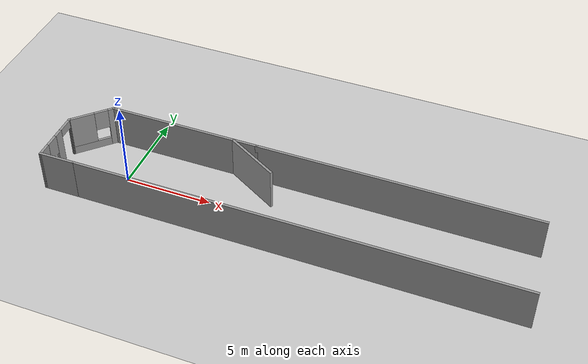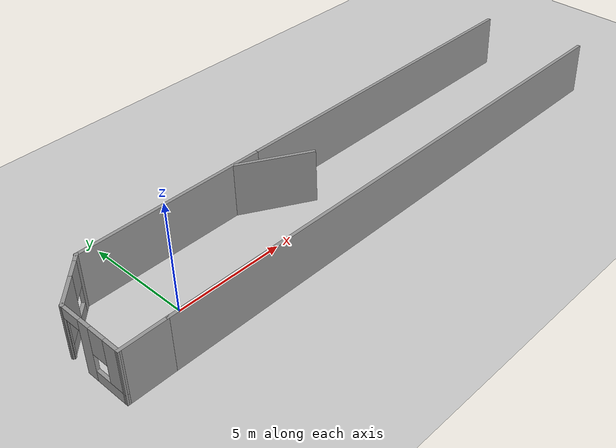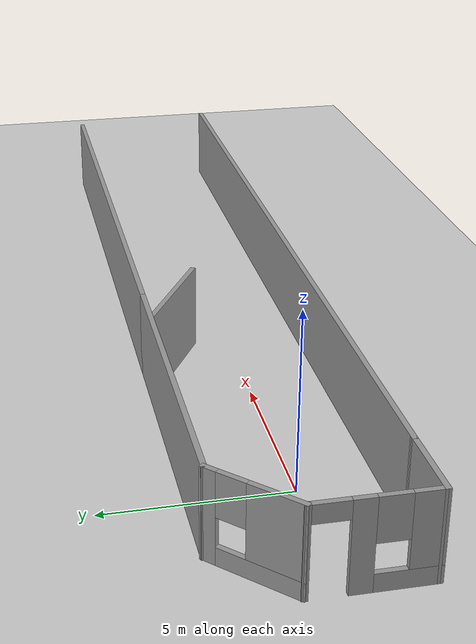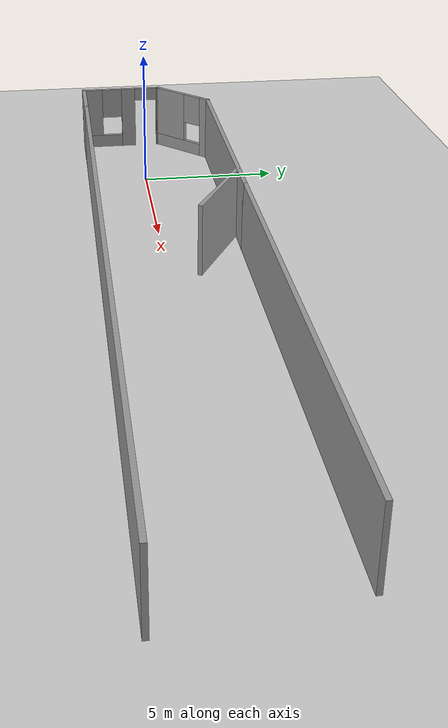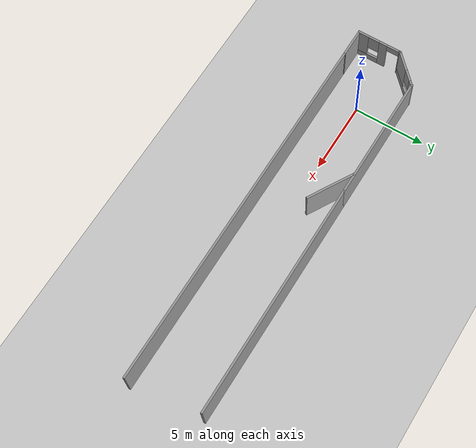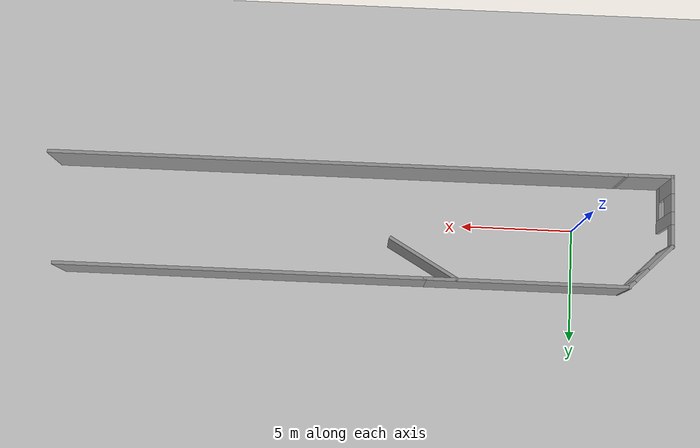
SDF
<sdf version="1.7">
 <world name="default">
  <light name="sun" type="directional">
   <pose>0 0 10 0 -0 0</pose>
   <diffuse>0.8 0.8 0.8 1</diffuse>
   <specular>0.2 0.2 0.2 1</specular>
   <attenuation>
    <range>1000</range>
    <constant>0.9</constant>
    <linear>0.01</linear>
    <quadratic>0.001</quadratic>
   </attenuation>
   <direction>-0.5 0.1 -0.9</direction>
   <spot><inner_angle>0</inner_angle><outer_angle>0</outer_angle><falloff>0</falloff></spot>
  </light>
  <model name="ground_plane">
   <static>1</static>
   <link name="link">
    <collision name="collision">
     <geometry><plane><normal>0 0 1</normal><size>100 100</size></plane></geometry>
     <surface><friction><ode><mu>100</mu><mu2>50</mu2></ode></friction></surface>
    </collision>
    <visual name="visual">
     <cast_shadows>0</cast_shadows>
     <geometry><plane><normal>0 0 1</normal><size>100 100</size></plane></geometry>
     <material>
      <script><uri>file://media/materials/scripts/gazebo.material</uri><name>Gazebo/Grey</name></script>
     </material>
    </visual>
   </link>
  </model>
  <gravity>0 0 -9.8</gravity>
  <magnetic_field>6e-06 2.3e-05 -4.2e-05</magnetic_field>
  <atmosphere type="adiabatic"/>
  <physics type="ode">
   <max_step_size>0.001</max_step_size>
   <real_time_factor>1</real_time_factor>
   <real_time_update_rate>1000</real_time_update_rate>
  </physics>
  <scene><ambient>0.4 0.4 0.4 1</ambient><background>0.7 0.7 0.7 1</background><shadows>1</shadows></scene>
  <spherical_coordinates>
   <surface_model>EARTH_WGS84</surface_model>
   <latitude_deg>0</latitude_deg>
   <longitude_deg>0</longitude_deg>
   <elevation>0</elevation>
   <heading_deg>0</heading_deg>
  </spherical_coordinates>
  <model name="slam">
   <pose>9.71362 0.299498 0 0 -0 0</pose>
   <link name="Wall_1">
    <collision name="Wall_1_Collision">
     <geometry><box><size>25.5 0.15 2.5</size></box></geometry>
     <pose>0 0 1.25 0 -0 0</pose>
    </collision>
    <visual name="Wall_1_Visual">
     <pose>0 0 1.25 0 -0 0</pose>
     <geometry><box><size>25.5 0.15 2.5</size></box></geometry>
     <material>
      <script><uri>file://media/materials/scripts/gazebo.material</uri><name>Gazebo/Grey</name></script>
      <ambient>1 1 1 1</ambient>
     </material>
     <meta><layer>0</layer></meta>
    </visual>
    <pose>1.03043 -2.47015 0 0 -0 0</pose>
   </link>
   <link name="Wall_11">
    <pose>-12.7551 1.53473 0 0 -0 -2.35619</pose>
    <visual name="Wall_11_Visual_0">
     <pose>-1.15999 0 1.25 0 -0 0</pose>
     <geometry><box><size>0.430026 0.15 2.5</size></box></geometry>
     <material>
      <script><uri>file://media/materials/scripts/gazebo.material</uri><name>Gazebo/Grey</name></script>
      <ambient>1 1 1 1</ambient>
     </material>
     <meta><layer>0</layer></meta>
    </visual>
    <collision name="Wall_11_Collision_0">
     <geometry><box><size>0.430026 0.15 2.5</size></box></geometry>
     <pose>-1.15999 0 1.25 0 -0 0</pose>
    </collision>
    <visual name="Wall_11_Visual_1">
     <pose>0.215013 0 0.25 0 -0 0</pose>
     <geometry><box><size>2.31997 0.15 0.5</size></box></geometry>
     <material>
      <script><uri>file://media/materials/scripts/gazebo.material</uri><name>Gazebo/Grey</name></script>
      <ambient>1 1 1 1</ambient>
     </material>
     <meta><layer>0</layer></meta>
    </visual>
    <collision name="Wall_11_Collision_1">
     <geometry><box><size>2.31997 0.15 0.5</size></box></geometry>
     <pose>0.215013 0 0.25 0 -0 0</pose>
    </collision>
    <visual name="Wall_11_Visual_2">
     <pose>0.615013 0 1.5 0 -0 0</pose>
     <geometry><box><size>1.51997 0.15 2</size></box></geometry>
     <material>
      <script><uri>file://media/materials/scripts/gazebo.material</uri><name>Gazebo/Grey</name></script>
      <ambient>1 1 1 1</ambient>
     </material>
     <meta><layer>0</layer></meta>
    </visual>
    <collision name="Wall_11_Collision_2">
     <geometry><box><size>1.51997 0.15 2</size></box></geometry>
     <pose>0.615013 0 1.5 0 -0 0</pose>
    </collision>
    <visual name="Wall_11_Visual_3">
     <pose>-0.544974 0 1.9 0 -0 0</pose>
     <geometry><box><size>0.8 0.15 1.2</size></box></geometry>
     <material>
      <script><uri>file://media/materials/scripts/gazebo.material</uri><name>Gazebo/Grey</name></script>
      <ambient>1 1 1 1</ambient>
     </material>
     <meta><layer>0</layer></meta>
    </visual>
    <collision name="Wall_11_Collision_3">
     <geometry><box><size>0.8 0.15 1.2</size></box></geometry>
     <pose>-0.544974 0 1.9 0 -0 0</pose>
    </collision>
   </link>
   <link name="Wall_12">
    <pose>-13.6744 -0.934508 0 0 -0 -1.5708</pose>
    <visual name="Wall_12_Visual_0">
     <pose>-1.54512 0 1.25 0 -0 0</pose>
     <geometry><box><size>0.15977 0.15 2.5</size></box></geometry>
     <material>
      <script><uri>file://media/materials/scripts/gazebo.material</uri><name>Gazebo/Grey</name></script>
      <ambient>1 1 1 1</ambient>
     </material>
     <meta><layer>0</layer></meta>
    </visual>
    <collision name="Wall_12_Collision_0">
     <geometry><box><size>0.15977 0.15 2.5</size></box></geometry>
     <pose>-1.54512 0 1.25 0 -0 0</pose>
    </collision>
    <visual name="Wall_12_Visual_1">
     <pose>-0.284746 0 1.25 0 -0 0</pose>
     <geometry><box><size>0.560967 0.15 2.5</size></box></geometry>
     <material>
      <script><uri>file://media/materials/scripts/gazebo.material</uri><name>Gazebo/Grey</name></script>
      <ambient>1 1 1 1</ambient>
     </material>
     <meta><layer>0</layer></meta>
    </visual>
    <collision name="Wall_12_Collision_1">
     <geometry><box><size>0.560967 0.15 2.5</size></box></geometry>
     <pose>-0.284746 0 1.25 0 -0 0</pose>
    </collision>
    <visual name="Wall_12_Visual_2">
     <pose>0.810369 0 0.25 0 -0 0</pose>
     <geometry><box><size>1.62926 0.15 0.5</size></box></geometry>
     <material>
      <script><uri>file://media/materials/scripts/gazebo.material</uri><name>Gazebo/Grey</name></script>
      <ambient>1 1 1 1</ambient>
     </material>
     <meta><layer>0</layer></meta>
    </visual>
    <collision name="Wall_12_Collision_2">
     <geometry><box><size>1.62926 0.15 0.5</size></box></geometry>
     <pose>0.810369 0 0.25 0 -0 0</pose>
    </collision>
    <visual name="Wall_12_Visual_3">
     <pose>1.21037 0 1.5 0 -0 0</pose>
     <geometry><box><size>0.829263 0.15 2</size></box></geometry>
     <material>
      <script><uri>file://media/materials/scripts/gazebo.material</uri><name>Gazebo/Grey</name></script>
      <ambient>1 1 1 1</ambient>
     </material>
     <meta><layer>0</layer></meta>
    </visual>
    <collision name="Wall_12_Collision_3">
     <geometry><box><size>0.829263 0.15 2</size></box></geometry>
     <pose>1.21037 0 1.5 0 -0 0</pose>
    </collision>
    <visual name="Wall_12_Visual_4">
     <pose>0.395737 0 1.9 0 -0 0</pose>
     <geometry><box><size>0.8 0.15 1.2</size></box></geometry>
     <material>
      <script><uri>file://media/materials/scripts/gazebo.material</uri><name>Gazebo/Grey</name></script>
      <ambient>1 1 1 1</ambient>
     </material>
     <meta><layer>0</layer></meta>
    </visual>
    <collision name="Wall_12_Collision_4">
     <geometry><box><size>0.8 0.15 1.2</size></box></geometry>
     <pose>0.395737 0 1.9 0 -0 0</pose>
    </collision>
    <visual name="Wall_12_Visual_5">
     <pose>-1.01523 0 2.25 0 -0 0</pose>
     <geometry><box><size>0.9 0.15 0.5</size></box></geometry>
     <material>
      <script><uri>file://media/materials/scripts/gazebo.material</uri><name>Gazebo/Grey</name></script>
      <ambient>1 1 1 1</ambient>
     </material>
     <meta><layer>0</layer></meta>
    </visual>
    <collision name="Wall_12_Collision_5">
     <geometry><box><size>0.9 0.15 0.5</size></box></geometry>
     <pose>-1.01523 0 2.25 0 -0 0</pose>
    </collision>
   </link>
   <link name="Wall_13">
    <collision name="Wall_13_Collision">
     <geometry><box><size>2.17984 0.15 2.5</size></box></geometry>
     <pose>0 0 1.25 0 -0 0</pose>
    </collision>
    <visual name="Wall_13_Visual">
     <pose>0 0 1.25 0 -0 0</pose>
     <geometry><box><size>2.17984 0.15 2.5</size></box></geometry>
     <material>
      <script><uri>file://media/materials/scripts/gazebo.material</uri><name>Gazebo/Grey</name></script>
      <ambient>1 1 1 1</ambient>
     </material>
     <meta><layer>0</layer></meta>
    </visual>
    <pose>-12.6595 -2.47733 0 0 -0 0.007074</pose>
   </link>
   <link name="Wall_15">
    <collision name="Wall_15_Collision">
     <geometry><box><size>16.25 0.15 2.5</size></box></geometry>
     <pose>0 0 1.25 0 -0 0</pose>
    </collision>
    <visual name="Wall_15_Visual">
     <pose>0 0 1.25 0 -0 0</pose>
     <geometry><box><size>16.25 0.15 2.5</size></box></geometry>
     <material>
      <script><uri>file://media/materials/scripts/gazebo.material</uri><name>Gazebo/Grey</name></script>
      <ambient>1 1 1 1</ambient>
     </material>
     <meta><layer>0</layer></meta>
    </visual>
    <pose>5.06412 2.45397 0 0 -0 0</pose>
   </link>
   <link name="Wall_18">
    <collision name="Wall_18_Collision">
     <geometry><box><size>3.5 0.15 2.5</size></box></geometry>
     <pose>0 0 1.25 0 -0 0</pose>
    </collision>
    <visual name="Wall_18_Visual">
     <pose>0 0 1.25 0 -0 0</pose>
     <geometry><box><size>3.5 0.15 2.5</size></box></geometry>
     <material>
      <script><uri>file://media/materials/scripts/gazebo.material</uri><name>Gazebo/Grey</name></script>
      <ambient>1 1 1 1</ambient>
     </material>
     <meta><layer>0</layer></meta>
    </visual>
    <pose>-2.9138 1.58901 0 0 -0 2.61799</pose>
   </link>
   <link name="Wall_7">
    <collision name="Wall_7_Collision">
     <geometry><box><size>9 0.15 2.5</size></box></geometry>
     <pose>0 0 1.25 0 -0 0</pose>
    </collision>
    <visual name="Wall_7_Visual">
     <pose>0 0 1.25 0 -0 0</pose>
     <geometry><box><size>9 0.15 2.5</size></box></geometry>
     <material>
      <script><uri>file://media/materials/scripts/gazebo.material</uri><name>Gazebo/Grey</name></script>
      <ambient>1 1 1 1</ambient>
     </material>
     <meta><layer>0</layer></meta>
    </visual>
    <pose>-7.41088 2.45397 0 0 -0 0</pose>
   </link>
   <static>1</static>
  </model>
 </world>
</sdf>
